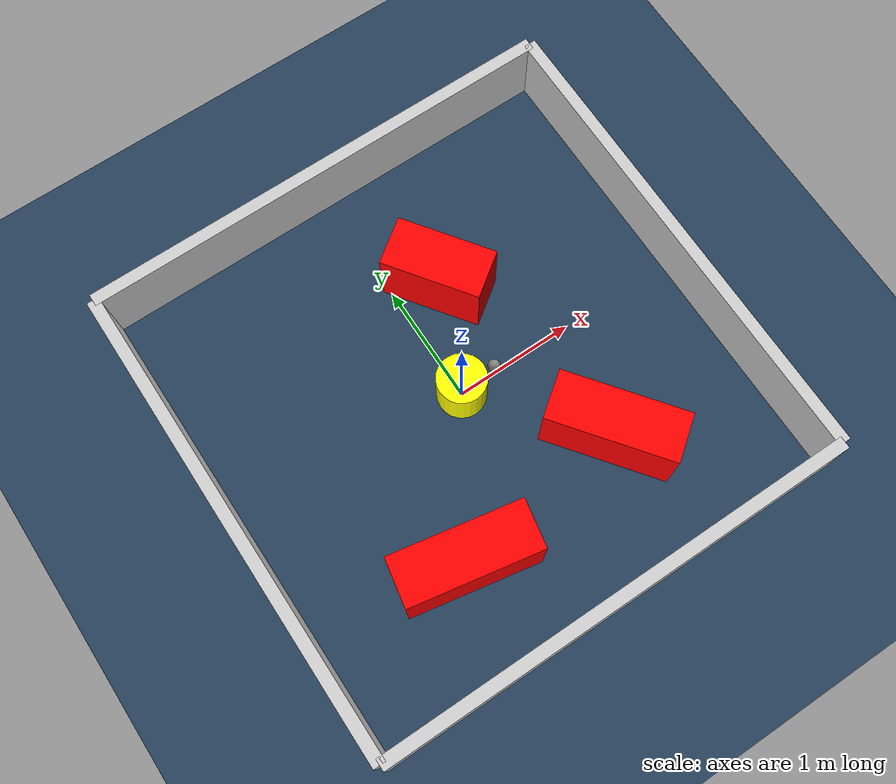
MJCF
<?xml version="1.0" ?>
<mujoco model="generated_environment">
  <option timestep="0.01" integrator="RK4" cone="elliptic"/>
  <default>
    <geom density="1"/>
  </default>
  <asset>
    <texture builtin="gradient" height="3072" rgb1="0.3 0.5 0.7" rgb2="0 0 0" type="skybox" width="512"/>
    <texture builtin="checker" height="300" mark="edge" markrgb="0.8 0.8 0.8" name="groundplane" rgb1="0.2 0.3 0.4" rgb2="0.1 0.2 0.3" type="2d" width="300"/>
    <material name="groundplane" reflectance="0.2" texrepeat="5 5" texture="groundplane" texuniform="true"/>
    <material name="robot" rgba="0.0 1.0 0.0 1"/>
  </asset>
  <worldbody>
    <light dir="0 0 -1" directional="true" pos="0 0 1.5"/>
    <geom condim="4" friction="1.0 0.005 0.001" material="groundplane" name="floor" size="0 0 0.05" type="plane"/>
    <body name="walls">
      <geom name="wall_1" condim="4" pos="-2.0 0.0 0.3" rgba="0.800000011920929 0.800000011920929 0.800000011920929 1.0" size="0.05 2.0 0.3" type="box"/>
      <geom name="wall_2" condim="4" pos="2.0 0.0 0.3" rgba="0.800000011920929 0.800000011920929 0.800000011920929 1.0" size="0.05 2.0 0.3" type="box"/>
      <geom name="wall_3" condim="4" pos="0.0 -2.0 0.3" rgba="0.800000011920929 0.800000011920929 0.800000011920929 1.0" size="2.0 0.05 0.3" type="box"/>
      <geom name="wall_4" condim="4" pos="0.0 2.0 0.3" rgba="0.800000011920929 0.800000011920929 0.800000011920929 1.0" size="2.0 0.05 0.3" type="box"/>
    </body>
    <body name="robot">
      <joint name="joint_x" type="slide" pos="0 0 0" axis="1 0 0"/>
      <joint name="joint_y" type="slide" pos="0 0 0" axis="0 1 0"/>
      <geom name="robot" type="sphere" pos="0.3 0.0 0.2" size="0.05" mass="5." friction="1.0 0.005 0.0001" condim="4" rgba="0.5 0.5 0.5 1.0"/>
      <site name="sensor_ball"/>
    </body>
    <body name="obstacle_movable_1">
      <geom name="obstacle_movable_1" condim="4" pos="0.0 0.0 0.2" euler="0 0 0.0" friction="1.0 0.005 0.001" rgba="1.0 1.0 0.0 1.0" size="0.2 0.2 0.0" type="cylinder" mass="0.1"/>
      <joint type="free"/>
    </body>
    <body name="obstacle_2_static">
      <geom name="obstacle_2_static" condim="4" pos="0.3544135810979079 0.849794541880666 0.3" euler="0 0 125.65251955310845" friction="1.0 0.005 0.001" rgba="1 0 0 1" size="0.40464766823052567 0.2 0.3" type="box"/>
    </body>
    <body name="obstacle_3_static">
      <geom name="obstacle_3_static" condim="4" pos="-0.7279254662625104 -1.138283926788029 0.3" euler="0 0 349.3389975276077" friction="1.0 0.005 0.001" rgba="1 0 0 1" size="0.5412431508266299 0.2 0.3" type="box"/>
    </body>
    <body name="obstacle_4_static">
      <geom name="obstacle_4_static" condim="4" pos="0.7577348200333336 -0.9275409513498637 0.3" euler="0 0 127.09169790227116" friction="1.0 0.005 0.001" rgba="1 0 0 1" size="0.5185545894232366 0.2 0.3" type="box"/>
    </body>
  </worldbody>
  <actuator>
    <motor name="actuator_x" joint="joint_x" gear="1" ctrlrange="-1 1"/>
    <motor name="actuator_y" joint="joint_y" gear="1" ctrlrange="-1 1"/>
  </actuator>
</mujoco>
